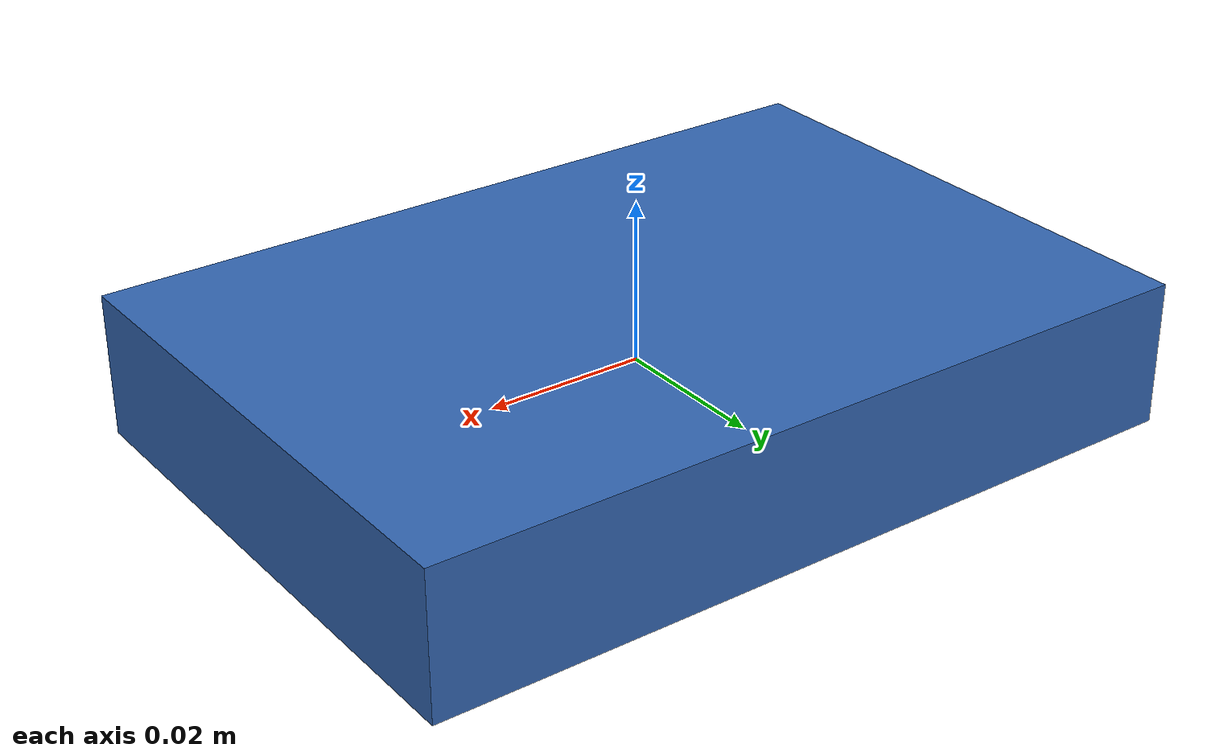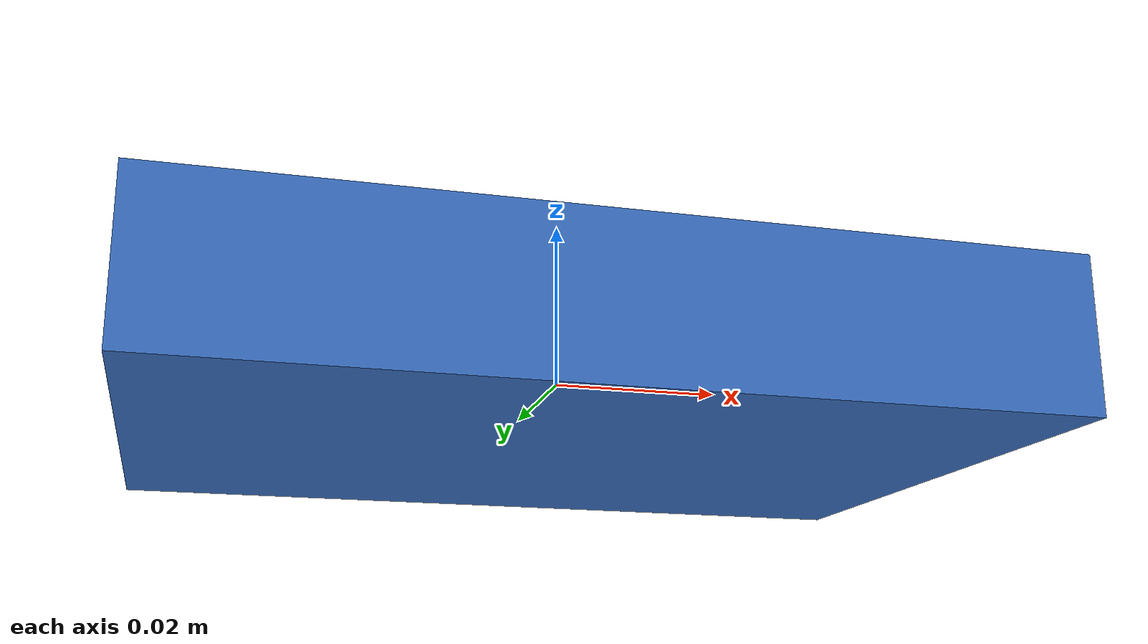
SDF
<?xml version="1.0" ?>
<sdf version="1.5">
  <!-- Book: box 0.100 x 0.070 x 0.018 → min(x,y) width = 70mm > 30mm gripper limit: detection-only -->
  <model name="book">
    <link name="link">
      <pose>0 0 0 0 0 0</pose>
      <inertial>
        <mass>0.050</mass>
        <inertia>
          <ixx>2.79e-5</ixx>
          <ixy>0</ixy><ixz>0</ixz>
          <iyy>4.28e-5</iyy>
          <iyz>0</iyz>
          <izz>6.04e-5</izz>
        </inertia>
      </inertial>
      <collision name="collision">
        <geometry>
          <box><size>0.100 0.070 0.018</size></box>
        </geometry>
        <surface>
          <contact><ode><kp>1000000</kp><kd>100</kd><max_vel>0.1</max_vel><min_depth>0.001</min_depth></ode></contact>
          <friction><ode><mu>0.8</mu><mu2>0.8</mu2></ode><torsional><coefficient>1.0</coefficient><use_patch_radius>0</use_patch_radius><surface_radius>0.035</surface_radius></torsional></friction>
        </surface>
      </collision>
      <visual name="visual">
        <geometry><box><size>0.100 0.070 0.018</size></box></geometry>
        <material><ambient>0.2 0.4 0.7 1</ambient><diffuse>0.2 0.4 0.7 1</diffuse></material>
      </visual>
    </link>
  </model>
</sdf>
